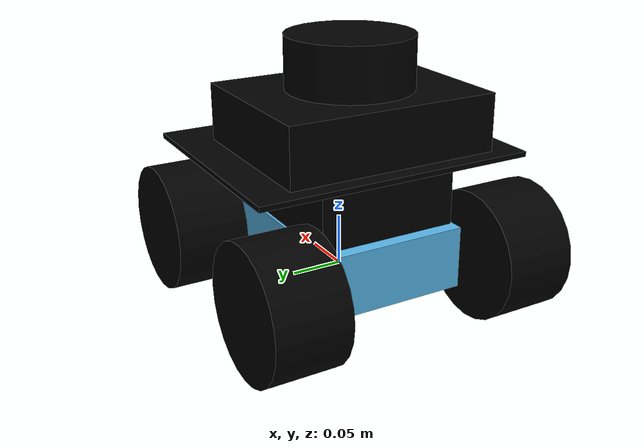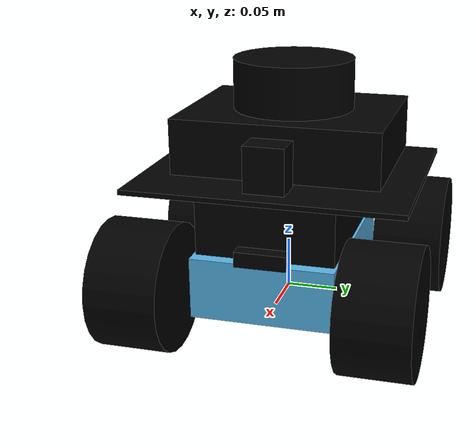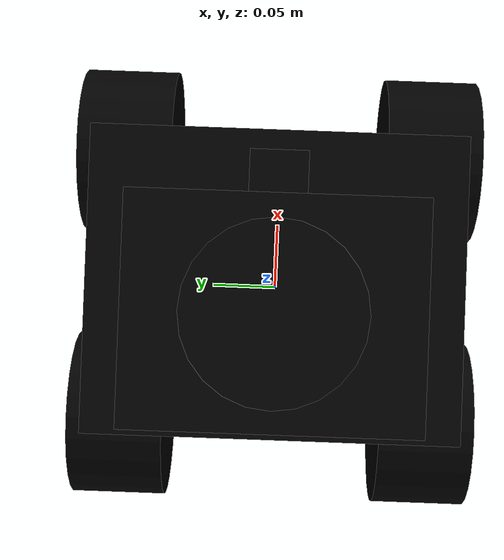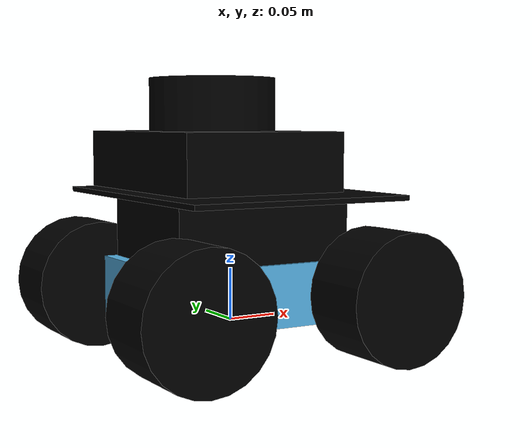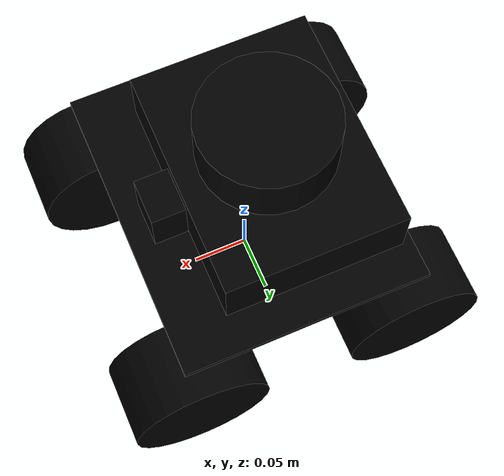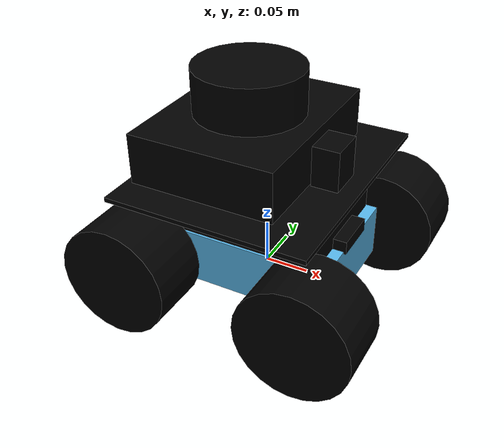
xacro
<?xml version="1.0"?>

<robot name="rover" xmlns:xacro="http://www.ros.org/wiki/xacro">
<material name="blue">
    <color rgba="0 0 0.8 1"/>
  </material>
  <material name="black">
    <color rgba="0 0 0 1"/>
  </material>
  <material name="white">
    <color rgba="1 1 1 1"/>
  </material>

<param name="pi" value="3.14159" />

  <link name="base_footprint">
      <inertial>
          <mass value="0.0001" />
          <origin xyz="0 0 0" rpy="0 0 ${pi}"/>
      <inertia ixx="0.0001" ixy="0.0" ixz="0.0"
                         iyy="0.0001" iyz="0.0"
                         izz="0.0001" />
      </inertial>

      <visual>
          <origin xyz="0 0 0" rpy="0 0 0" />
          <geometry>
             <box size="0.001 0.001 0.001" />
          </geometry>
      </visual>

      <collision>
          <origin xyz="0 0 0.0" rpy="0 0 0" />
          <geometry>
            <box size="0.001 0.001 0.001" />
         </geometry>
     </collision>
  </link>

  <joint name="base_footprint_joint" type="fixed">
     <origin xyz="0 0 0.03125" rpy="0 0 0" />
     <parent link="base_footprint"/>
     <child link="base_link" />
  </joint>

  <link name="base_link">
    <visual>
      <origin rpy="0 0 0" xyz="0 0 0"/>
      <geometry>
        <box size="0.205 0.14 0.06"/>
      </geometry>
    </visual>
    <collision>
      <origin rpy="0 0 0" xyz="0 0 0"/>
      <geometry>
        <box size="0.205 0.14 0.06"/>
      </geometry>
    </collision>
    <inertial>
            <mass value="0.0001"/>
      <inertia ixx="0.4" ixy="0.0" ixz="0.0" iyy="0.4" iyz="0.0" izz="0.2"/>
    </inertial>
  </link>

  <joint name="base_mid_joint" type="fixed">
    <parent link="base_link"/>
    <child link="mid_link"/>
    <origin rpy="0 0 0" xyz="0 0 0.06"/>
  </joint>
  <link name="mid_link">
    <visual>
      <origin rpy="0 0 0" xyz="0 0 0"/>
      <geometry>
        <box size="0.18 0.135 0.06"/>
      </geometry>
      <material name="black"/>
      <origin rpy="0 0 0" xyz="0 0 0"/>
    </visual>
    <collision>
      <geometry>
        <box size="0.18 0.135 0.06"/>
      </geometry>
    </collision>
    <inertial>
            <mass value="0.0001"/>
      <inertia ixx="0.4" ixy="0.0" ixz="0.0" iyy="0.4" iyz="0.0" izz="0.2"/>
    </inertial>
  </link>

  <joint name="mid_platform_joint" type="fixed">
    <parent link="mid_link"/>
    <child link="platform_link"/>
    <origin rpy="0 0 0" xyz="0 0 0.0325"/>
  </joint>
  <link name="platform_link">
    <visual>
      <origin rpy="0 0 0" xyz="0 0 0"/>
      <geometry>
        <box size="0.22 0.27 0.005"/>
      </geometry>
      <material name="black"/>
    </visual>
    <collision>
      <geometry>
        <box size="0.22 0.27 0.005"/>
      </geometry>
    </collision>
    <inertial>
            <mass value="0.0001"/>
      <inertia ixx="0.4" ixy="0.0" ixz="0.0" iyy="0.4" iyz="0.0" izz="0.2"/>
    </inertial>
  </link>

  <joint name="platform_top_joint" type="fixed">
    <parent link="platform_link"/>
    <child link="top_link"/>
    <origin rpy="0 0 0" xyz="-0.02 0 0.0325"/>
  </joint>
  <link name="top_link">
    <visual>
      <origin rpy="0 0 0" xyz="0 0 0"/>
      <geometry>
        <box size="0.16 0.205 0.055"/>
      </geometry>
      <material name="black"/>
    </visual>
    <collision>
      <geometry>
        <box size="0.16 0.205 0.055"/>
      </geometry>
    </collision>
    <inertial>
      <mass value="0.0001"/>
      <inertia ixx="0.4" ixy="0.0" ixz="0.0" iyy="0.4" iyz="0.0" izz="0.2"/>
    </inertial>
  </link>

<!-- sensors -->
  <joint name="platform_camera_joint" type="fixed">
    <parent link="platform_link"/>
    <child link="camera_link"/>
    <origin rpy="0 0 0" xyz="0.075 0 0.025"/>
  </joint>
  <link name="camera_link">
    <visual>
      <origin rpy="0 0 0" xyz="0 0 0"/>
      <geometry>
        <box size="0.03 0.04 0.045"/>
      </geometry>
      <material name="black"/>
      <origin rpy="0 0 0" xyz="0 0 0"/>
    </visual>
    <collision>
      <geometry>
        <box size="0.03 0.04 0.045"/>
      </geometry>
    </collision>
    <inertial>
      <mass value="0.0001"/>
      <inertia ixx="0.4" ixy="0.0" ixz="0.0" iyy="0.4" iyz="0.0" izz="0.2"/>
    </inertial>
  </link>

  <joint name="top_rplidar_joint" type="fixed">
    <parent link="top_link"/>
    <child link="rplidar_link"/>
    <origin rpy="0 0 ${pi}" xyz="0 0 0.0525"/>
  </joint>
  <link name="rplidar_link">
    <visual>
      <origin rpy="0 0 0" xyz="0 0 0"/>
      <geometry>
        <cylinder length="0.05" radius="0.06"/>
      </geometry>
      <material name="black"/>
      <origin rpy="0 0 0" xyz="0 0 0"/>
    </visual>
    <collision>
      <geometry>
        <cylinder length="0.05" radius="0.06"/>
      </geometry>
    </collision>
    <inertial>
      <mass value="0.0001"/>
      <inertia ixx="0.4" ixy="0.0" ixz="0.0" iyy="0.4" iyz="0.0" izz="0.2"/>
    </inertial>
  </link>

  <joint name="base_fcu_joint" type="fixed">
    <parent link="base_link"/>
    <child link="fcu"/>
    <origin rpy="0 0 0" xyz="0.06 0 0.035"/>
  </joint>
  <link name="fcu">
    <visual>
      <origin rpy="0 0 0" xyz="0 0 0"/>
      <geometry>
        <box size="0.09 0.05 0.015"/>
      </geometry>
      <material name="black"/>
      <origin rpy="0 0 0" xyz="0 0 0"/>
    </visual>
    <collision>
      <geometry>
        <box size="0.09 0.05 0.015"/>
      </geometry>
    </collision>
    <inertial>
      <mass value="0.0001"/>
      <inertia ixx="0.4" ixy="0.0" ixz="0.0" iyy="0.4" iyz="0.0" izz="0.2"/>
    </inertial>
  </link>

    <link name="right_front_wheel">
      <visual>
        <origin xyz="0 0 0" rpy="${pi/2} 0 0" />
        <geometry>
          <cylinder length="0.07" radius="0.0625"/>
        </geometry>
        <origin xyz="0 0 0" rpy="0 0 0" />
        <material name="black"/>
      </visual>
      <collision>
        <origin xyz="0 0 0" rpy="${pi/2} 0 0" />
        <geometry>
          <cylinder length="0.07" radius="0.0625"/>
        </geometry>
        <origin xyz="0 0 0" rpy="0 0 0" />
      </collision>
      <inertial>
        <mass value="0.0001"/>
        <inertia ixx="2e-08" ixy="0" ixz="0" iyy="3e-08" iyz="0" izz="2e-08"/>
      </inertial>
    </link>
    <joint name="right_front_wheel_joint" type="continuous">
      <axis xyz="0 1 0" rpy="0 0 0" />
      <parent link="base_link"/>
      <child link="right_front_wheel"/>
      <origin xyz="0.1025 0.115 0" rpy="0 0 0"/>
    </joint>

    <link name="left_front_wheel">
      <visual>
        <origin xyz="0 0 0" rpy="${pi/2} 0 0" />
        <geometry>
          <cylinder length="0.07" radius="0.0625"/>
        </geometry>
        <origin xyz="0 0 0" rpy="0 0 0" />
        <material name="black"/>
      </visual>
      <collision>
        <origin xyz="0 0 0" rpy="${pi/2} 0 0" />
        <geometry>
          <cylinder length="0.07" radius="0.0625"/>
        </geometry>
        <origin xyz="0 0 0" rpy="0 0 0" />
      </collision>
      <inertial>
        <mass value="0.0001"/>
        <inertia ixx="2e-08" ixy="0" ixz="0" iyy="3e-08" iyz="0" izz="2e-08"/>
      </inertial>
    </link>
    <joint name="left_front_wheel_joint" type="continuous">
      <axis xyz="0 1 0" rpy="0 0 0" />
      <parent link="base_link"/>
      <child link="left_front_wheel"/>
      <origin xyz="-0.1025 0.115 0" rpy="0 0 0"/>
    </joint>

    <link name="right_back_wheel">
      <visual>
        <origin xyz="0 0 0" rpy="${pi/2} 0 0" />
        <geometry>
          <cylinder length="0.07" radius="0.0625"/>
        </geometry>
        <origin xyz="0 0 0" rpy="0 0 0" />
        <material name="black"/>
      </visual>
      <collision>
        <origin xyz="0 0 0" rpy="${pi/2} 0 0" />
        <geometry>
          <cylinder length="0.07" radius="0.0625"/>
        </geometry>
        <origin xyz="0 0 0" rpy="0 0 0" />
      </collision>
      <inertial>
        <mass value="0.0001"/>
        <inertia ixx="2e-08" ixy="0" ixz="0" iyy="3e-08" iyz="0" izz="2e-08"/>
      </inertial>
    </link>
    <joint name="right_back_wheel_joint" type="continuous">

      <axis xyz="0 1 0" rpy="0 0 0" />
      <parent link="base_link"/>
      <child link="right_back_wheel"/>
      <origin xyz="0.1025 -0.115 0" rpy="0 0 0"/>
    </joint>

    <link name="left_back_wheel">
      <visual>
        <origin xyz="0 0 0" rpy="${pi/2} 0 0" />
        <geometry>
          <cylinder length="0.07" radius="0.0625"/>
        </geometry>
        <origin xyz="0 0 0" rpy="0 0 0" />
        <material name="black"/>
      </visual>
      <collision>
        <origin xyz="0 0 0" rpy="${pi/2} 0 0" />
        <geometry>
          <cylinder length="0.07" radius="0.0625"/>
        </geometry>
        <origin xyz="0 0 0" rpy="0 0 0" />
      </collision>
      <inertial>
        <mass value="0.0001"/>
        <inertia ixx="2e-08" ixy="0" ixz="0" iyy="3e-08" iyz="0" izz="2e-08"/>
      </inertial>
    </link>
    <joint name="left_back_wheel_joint" type="continuous">
      <axis xyz="0 1 0" rpy="0 0 0" />
      <parent link="base_link"/>
      <child link="left_back_wheel"/>
      <origin xyz="-0.1025 -0.115 0" rpy="0 0 0"/>
    </joint>
</robot>
